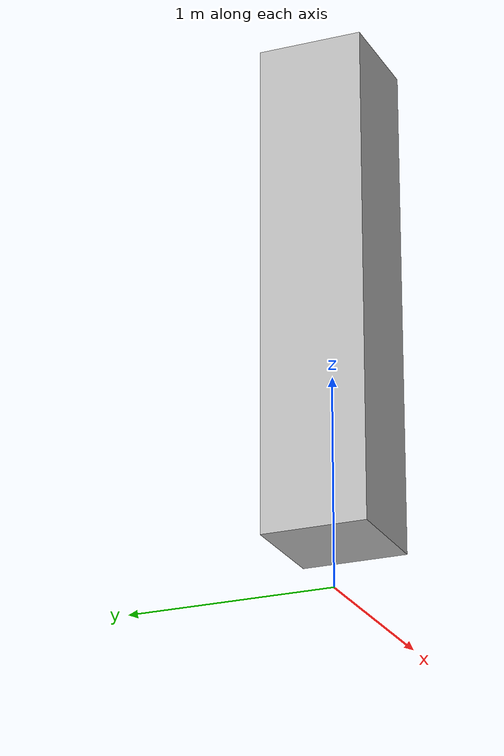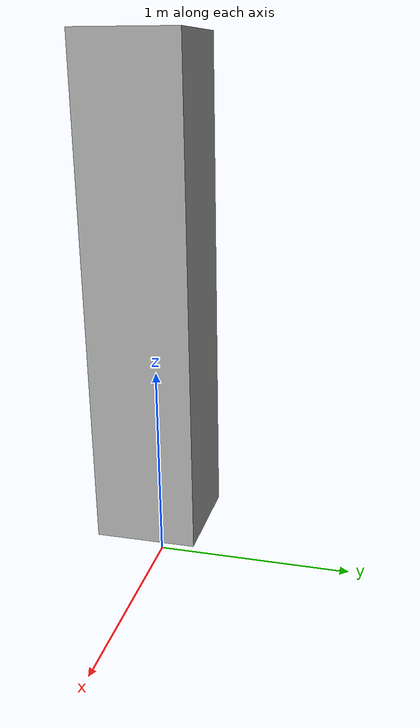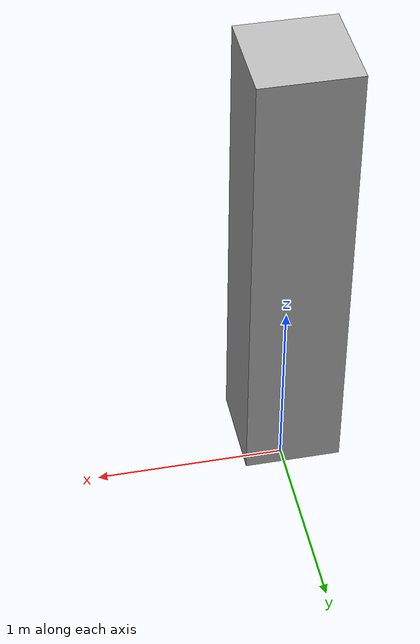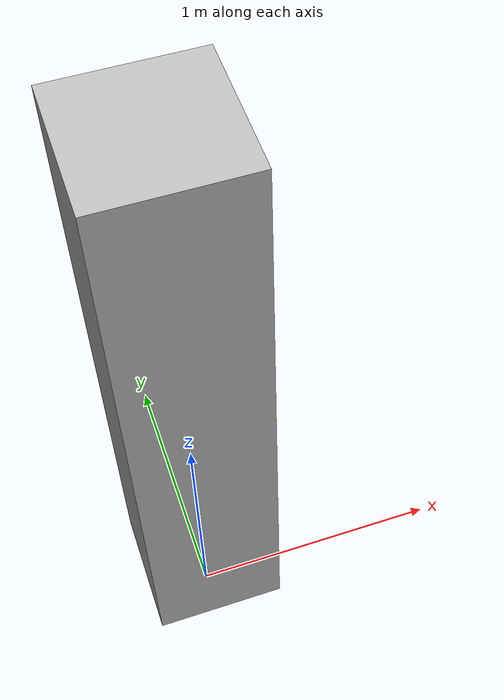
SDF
<?xml version="1.0" ?>
<sdf version="1.3">
  <model name="mypillar">
    <static>true</static>
    <link name="link">
      <pose>0 0 1.4 0 0 0</pose>
      <collision name="collision">
        <geometry>
          <box>
            <size>0.5 0.5 2.4</size>
          </box>
        </geometry>
      </collision>
      <visual name="visual">
        <cast_shadows>false</cast_shadows>
        <geometry>
          <box>
            <size>0.5 0.5 2.4</size>
          </box>
        </geometry>
        <material>
          <script>
            <uri>model://mypillar/materials/scripts</uri>
            <uri>model://mypillar/materials/textures</uri>
            <name>vrc/mypillar</name>
          </script>
        </material>
      </visual>
    </link>
  </model>
</sdf>
